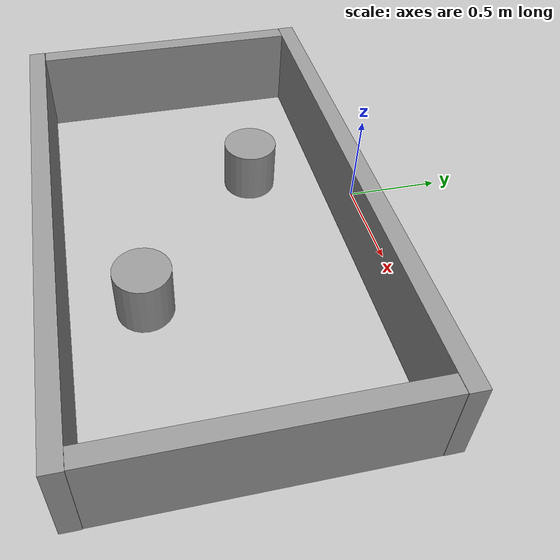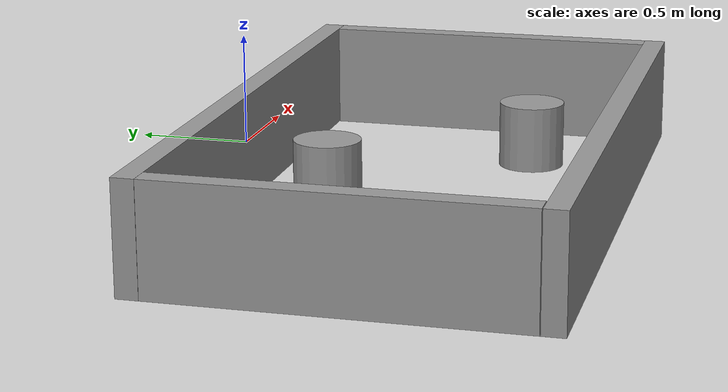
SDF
<?xml version='1.0'?>
<sdf version='1.6'>
  <model name='boundary_with_obstacle'>
    <link name='link'>
      <inertial>
        <mass>1</mass>
        <inertia>
          <ixx>0.166667</ixx>
          <ixy>0</ixy>
          <ixz>0</ixz>
          <iyy>0.166667</iyy>
          <iyz>0</iyz>
          <izz>0.166667</izz>
        </inertia>
        <pose frame=''>0 0 0 0 -0 0</pose>
      </inertial>
      <self_collide>0</self_collide>
      <enable_wind>0</enable_wind>
      <kinematic>0</kinematic>
      <pose frame=''>0 0 0 0 -0 0</pose>
      <gravity>1</gravity>
      <visual name='visual'>
        <geometry>
          <box>
            <size>3 0.1 0.5</size>
          </box>
        </geometry>
        <material>
          <script>
            <name>Gazebo/Grey</name>
            <uri>file://media/materials/scripts/gazebo.material</uri>
          </script>
          <shader type='pixel'>
            <normal_map>__default__</normal_map>
          </shader>
          <ambient>0.3 0.3 0.3 1</ambient>
          <diffuse>0.7 0.7 0.7 1</diffuse>
          <specular>0.01 0.01 0.01 1</specular>
          <emissive>0 0 0 1</emissive>
        </material>
        <pose frame=''>0 0 0 0 -0 0</pose>
        <transparency>0</transparency>
        <cast_shadows>1</cast_shadows>
      </visual>
      <collision name='collision'>
        <laser_retro>0</laser_retro>
        <max_contacts>10</max_contacts>
        <pose frame=''>0 0 0 0 -0 0</pose>
        <geometry>
          <box>
            <size>3 0.1 0.5</size>
          </box>
        </geometry>
        <surface>
          <friction>
            <ode>
              <mu>1</mu>
              <mu2>1</mu2>
              <fdir1>0 0 0</fdir1>
              <slip1>0</slip1>
              <slip2>0</slip2>
            </ode>
            <torsional>
              <coefficient>1</coefficient>
              <patch_radius>0</patch_radius>
              <surface_radius>0</surface_radius>
              <use_patch_radius>1</use_patch_radius>
              <ode>
                <slip>0</slip>
              </ode>
            </torsional>
          </friction>
          <bounce>
            <restitution_coefficient>0</restitution_coefficient>
            <threshold>1e+06</threshold>
          </bounce>
          <contact>
            <collide_without_contact>0</collide_without_contact>
            <collide_without_contact_bitmask>1</collide_without_contact_bitmask>
            <collide_bitmask>1</collide_bitmask>
            <ode>
              <soft_cfm>0</soft_cfm>
              <soft_erp>0.2</soft_erp>
              <kp>1e+13</kp>
              <kd>1</kd>
              <max_vel>0.01</max_vel>
              <min_depth>0</min_depth>
            </ode>
            <bullet>
              <split_impulse>1</split_impulse>
              <split_impulse_penetration_threshold>-0.01</split_impulse_penetration_threshold>
              <soft_cfm>0</soft_cfm>
              <soft_erp>0.2</soft_erp>
              <kp>1e+13</kp>
              <kd>1</kd>
            </bullet>
          </contact>
        </surface>
      </collision>
    </link>
    <model name='boundary'>
      <link name='link_0'>
        <inertial>
          <mass>1</mass>
          <inertia>
            <ixx>0.166667</ixx>
            <ixy>0</ixy>
            <ixz>0</ixz>
            <iyy>0.166667</iyy>
            <iyz>0</iyz>
            <izz>0.166667</izz>
          </inertia>
          <pose frame=''>0 0 0 0 -0 0</pose>
        </inertial>
        <pose frame=''>0.849669 -0.574934 1e-05 -1e-05 0 0</pose>
        <gravity>1</gravity>
        <self_collide>0</self_collide>
        <kinematic>0</kinematic>
        <enable_wind>0</enable_wind>
        <visual name='visual'>
          <pose frame=''>0 0 0 0 -0 0</pose>
          <geometry>
            <box>
              <size>0.1 1.6 0.5</size>
            </box>
          </geometry>
          <material>
            <lighting>1</lighting>
            <script>
              <uri>file://media/materials/scripts/gazebo.material</uri>
              <name>Gazebo/Grey</name>
            </script>
            <shader type='pixel'>
              <normal_map>__default__</normal_map>
            </shader>
            <ambient>0.3 0.3 0.3 1</ambient>
            <diffuse>0.7 0.7 0.7 1</diffuse>
            <specular>0.01 0.01 0.01 1</specular>
            <emissive>0 0 0 1</emissive>
          </material>
          <transparency>0</transparency>
          <cast_shadows>1</cast_shadows>
        </visual>
        <collision name='collision'>
          <laser_retro>0</laser_retro>
          <max_contacts>10</max_contacts>
          <pose frame=''>0 0 0 0 -0 0</pose>
          <geometry>
            <box>
              <size>0.1 1.6 0.5</size>
            </box>
          </geometry>
          <surface>
            <friction>
              <ode>
                <mu>1</mu>
                <mu2>1</mu2>
                <fdir1>0 0 0</fdir1>
                <slip1>0</slip1>
                <slip2>0</slip2>
              </ode>
              <torsional>
                <coefficient>1</coefficient>
                <patch_radius>0</patch_radius>
                <surface_radius>0</surface_radius>
                <use_patch_radius>1</use_patch_radius>
                <ode>
                  <slip>0</slip>
                </ode>
              </torsional>
            </friction>
            <bounce>
              <restitution_coefficient>0</restitution_coefficient>
              <threshold>1e+06</threshold>
            </bounce>
            <contact>
              <collide_without_contact>0</collide_without_contact>
              <collide_without_contact_bitmask>1</collide_without_contact_bitmask>
              <collide_bitmask>1</collide_bitmask>
              <ode>
                <soft_cfm>0</soft_cfm>
                <soft_erp>0.2</soft_erp>
                <kp>1e+13</kp>
                <kd>1</kd>
                <max_vel>0.01</max_vel>
                <min_depth>0</min_depth>
              </ode>
              <bullet>
                <split_impulse>1</split_impulse>
                <split_impulse_penetration_threshold>-0.01</split_impulse_penetration_threshold>
                <soft_cfm>0</soft_cfm>
                <soft_erp>0.2</soft_erp>
                <kp>1e+13</kp>
                <kd>1</kd>
              </bullet>
            </contact>
          </surface>
        </collision>
      </link>
      <static>0</static>
      <allow_auto_disable>1</allow_auto_disable>
      <pose frame=''>0.598833 -0.276304 0.000111 0 0 0</pose>
    </model>
    <model name='boundary_0'>
      <link name='link'>
        <inertial>
          <mass>1</mass>
          <inertia>
            <ixx>0.166667</ixx>
            <ixy>0</ixy>
            <ixz>0</ixz>
            <iyy>0.166667</iyy>
            <iyz>0</iyz>
            <izz>0.166667</izz>
          </inertia>
          <pose frame=''>0 0 0 0 -0 0</pose>
        </inertial>
        <self_collide>0</self_collide>
        <enable_wind>0</enable_wind>
        <kinematic>0</kinematic>
        <pose frame=''>0 0 0 0 -0 0</pose>
        <gravity>1</gravity>
        <visual name='visual'>
          <geometry>
            <box>
              <size>3 0.1 0.5</size>
            </box>
          </geometry>
          <material>
            <script>
              <name>Gazebo/Grey</name>
              <uri>file://media/materials/scripts/gazebo.material</uri>
            </script>
            <shader type='pixel'>
              <normal_map>__default__</normal_map>
            </shader>
            <ambient>0.3 0.3 0.3 1</ambient>
            <diffuse>0.7 0.7 0.7 1</diffuse>
            <specular>0.01 0.01 0.01 1</specular>
            <emissive>0 0 0 1</emissive>
          </material>
          <pose frame=''>0 0 0 0 -0 0</pose>
          <transparency>0</transparency>
          <cast_shadows>1</cast_shadows>
        </visual>
        <collision name='collision'>
          <laser_retro>0</laser_retro>
          <max_contacts>10</max_contacts>
          <pose frame=''>0 0 0 0 -0 0</pose>
          <geometry>
            <box>
              <size>3 0.1 0.5</size>
            </box>
          </geometry>
          <surface>
            <friction>
              <ode>
                <mu>1</mu>
                <mu2>1</mu2>
                <fdir1>0 0 0</fdir1>
                <slip1>0</slip1>
                <slip2>0</slip2>
              </ode>
              <torsional>
                <coefficient>1</coefficient>
                <patch_radius>0</patch_radius>
                <surface_radius>0</surface_radius>
                <use_patch_radius>1</use_patch_radius>
                <ode>
                  <slip>0</slip>
                </ode>
              </torsional>
            </friction>
            <bounce>
              <restitution_coefficient>0</restitution_coefficient>
              <threshold>1e+06</threshold>
            </bounce>
            <contact>
              <collide_without_contact>0</collide_without_contact>
              <collide_without_contact_bitmask>1</collide_without_contact_bitmask>
              <collide_bitmask>1</collide_bitmask>
              <ode>
                <soft_cfm>0</soft_cfm>
                <soft_erp>0.2</soft_erp>
                <kp>1e+13</kp>
                <kd>1</kd>
                <max_vel>0.01</max_vel>
                <min_depth>0</min_depth>
              </ode>
              <bullet>
                <split_impulse>1</split_impulse>
                <split_impulse_penetration_threshold>-0.01</split_impulse_penetration_threshold>
                <soft_cfm>0</soft_cfm>
                <soft_erp>0.2</soft_erp>
                <kp>1e+13</kp>
                <kd>1</kd>
              </bullet>
            </contact>
          </surface>
        </collision>
      </link>
      <static>0</static>
      <allow_auto_disable>1</allow_auto_disable>
      <pose frame=''>0.000903 -1.70179 -8e-06 0 0 0</pose>
    </model>
    <model name='boundary_1'>
      <link name='link_0'>
        <inertial>
          <mass>1</mass>
          <inertia>
            <ixx>0.166667</ixx>
            <ixy>0</ixy>
            <ixz>0</ixz>
            <iyy>0.166667</iyy>
            <iyz>0</iyz>
            <izz>0.166667</izz>
          </inertia>
          <pose frame=''>0 0 0 0 -0 0</pose>
        </inertial>
        <pose frame=''>0.849669 -0.574934 1e-05 -1e-05 0 0</pose>
        <gravity>1</gravity>
        <self_collide>0</self_collide>
        <kinematic>0</kinematic>
        <enable_wind>0</enable_wind>
        <visual name='visual'>
          <pose frame=''>0 0 0 0 -0 0</pose>
          <geometry>
            <box>
              <size>0.1 1.6 0.5</size>
            </box>
          </geometry>
          <material>
            <lighting>1</lighting>
            <script>
              <uri>file://media/materials/scripts/gazebo.material</uri>
              <name>Gazebo/Grey</name>
            </script>
            <shader type='pixel'>
              <normal_map>__default__</normal_map>
            </shader>
            <ambient>0.3 0.3 0.3 1</ambient>
            <diffuse>0.7 0.7 0.7 1</diffuse>
            <specular>0.01 0.01 0.01 1</specular>
            <emissive>0 0 0 1</emissive>
          </material>
          <transparency>0</transparency>
          <cast_shadows>1</cast_shadows>
        </visual>
        <collision name='collision'>
          <laser_retro>0</laser_retro>
          <max_contacts>10</max_contacts>
          <pose frame=''>0 0 0 0 -0 0</pose>
          <geometry>
            <box>
              <size>0.1 1.6 0.5</size>
            </box>
          </geometry>
          <surface>
            <friction>
              <ode>
                <mu>1</mu>
                <mu2>1</mu2>
                <fdir1>0 0 0</fdir1>
                <slip1>0</slip1>
                <slip2>0</slip2>
              </ode>
              <torsional>
                <coefficient>1</coefficient>
                <patch_radius>0</patch_radius>
                <surface_radius>0</surface_radius>
                <use_patch_radius>1</use_patch_radius>
                <ode>
                  <slip>0</slip>
                </ode>
              </torsional>
            </friction>
            <bounce>
              <restitution_coefficient>0</restitution_coefficient>
              <threshold>1e+06</threshold>
            </bounce>
            <contact>
              <collide_without_contact>0</collide_without_contact>
              <collide_without_contact_bitmask>1</collide_without_contact_bitmask>
              <collide_bitmask>1</collide_bitmask>
              <ode>
                <soft_cfm>0</soft_cfm>
                <soft_erp>0.2</soft_erp>
                <kp>1e+13</kp>
                <kd>1</kd>
                <max_vel>0.01</max_vel>
                <min_depth>0</min_depth>
              </ode>
              <bullet>
                <split_impulse>1</split_impulse>
                <split_impulse_penetration_threshold>-0.01</split_impulse_penetration_threshold>
                <soft_cfm>0</soft_cfm>
                <soft_erp>0.2</soft_erp>
                <kp>1e+13</kp>
                <kd>1</kd>
              </bullet>
            </contact>
          </surface>
        </collision>
      </link>
      <static>0</static>
      <allow_auto_disable>1</allow_auto_disable>
      <pose frame=''>-2.29821 -0.273124 -0.000431 0 0 0</pose>
    </model>
    <model name='cylinder_obstacle'>
      <link name='link'>
        <inertial>
          <mass>1</mass>
          <inertia>
            <ixx>0.145833</ixx>
            <ixy>0</ixy>
            <ixz>0</ixz>
            <iyy>0.145833</iyy>
            <iyz>0</iyz>
            <izz>0.125</izz>
          </inertia>
          <pose frame=''>0 0 0 0 -0 0</pose>
        </inertial>
        <self_collide>0</self_collide>
        <enable_wind>0</enable_wind>
        <kinematic>0</kinematic>
        <pose frame=''>0 0 0 0 -0 0</pose>
        <gravity>1</gravity>
        <visual name='visual'>
          <geometry>
            <cylinder>
              <radius>0.15</radius>
              <length>0.3</length>
            </cylinder>
          </geometry>
          <material>
            <script>
              <name>Gazebo/Grey</name>
              <uri>file://media/materials/scripts/gazebo.material</uri>
            </script>
            <shader type='pixel'>
              <normal_map>__default__</normal_map>
            </shader>
            <ambient>0.3 0.3 0.3 1</ambient>
            <diffuse>0.7 0.7 0.7 1</diffuse>
            <specular>0.01 0.01 0.01 1</specular>
            <emissive>0 0 0 1</emissive>
          </material>
          <pose frame=''>0 0 0 0 -0 0</pose>
          <transparency>0</transparency>
          <cast_shadows>1</cast_shadows>
        </visual>
        <collision name='collision'>
          <laser_retro>0</laser_retro>
          <max_contacts>10</max_contacts>
          <pose frame=''>0 0 0 0 -0 0</pose>
          <geometry>
            <cylinder>
              <radius>0.15</radius>
              <length>0.3</length>
            </cylinder>
          </geometry>
          <surface>
            <friction>
              <ode>
                <mu>1</mu>
                <mu2>1</mu2>
                <fdir1>0 0 0</fdir1>
                <slip1>0</slip1>
                <slip2>0</slip2>
              </ode>
              <torsional>
                <coefficient>1</coefficient>
                <patch_radius>0</patch_radius>
                <surface_radius>0</surface_radius>
                <use_patch_radius>1</use_patch_radius>
                <ode>
                  <slip>0</slip>
                </ode>
              </torsional>
            </friction>
            <bounce>
              <restitution_coefficient>0</restitution_coefficient>
              <threshold>1e+06</threshold>
            </bounce>
            <contact>
              <collide_without_contact>0</collide_without_contact>
              <collide_without_contact_bitmask>1</collide_without_contact_bitmask>
              <collide_bitmask>1</collide_bitmask>
              <ode>
                <soft_cfm>0</soft_cfm>
                <soft_erp>0.2</soft_erp>
                <kp>1e+13</kp>
                <kd>1</kd>
                <max_vel>0.01</max_vel>
                <min_depth>0</min_depth>
              </ode>
              <bullet>
                <split_impulse>1</split_impulse>
                <split_impulse_penetration_threshold>-0.01</split_impulse_penetration_threshold>
                <soft_cfm>0</soft_cfm>
                <soft_erp>0.2</soft_erp>
                <kp>1e+13</kp>
                <kd>1</kd>
              </bullet>
            </contact>
          </surface>
        </collision>
      </link>
      <static>0</static>
      <allow_auto_disable>1</allow_auto_disable>
      <pose frame=''>-0.394642 -0.50638 6e-06 0 0 0</pose>
    </model>
    <model name='cylinder_obstacle_0'>
      <link name='link'>
        <inertial>
          <mass>1</mass>
          <inertia>
            <ixx>0.145833</ixx>
            <ixy>0</ixy>
            <ixz>0</ixz>
            <iyy>0.145833</iyy>
            <iyz>0</iyz>
            <izz>0.125</izz>
          </inertia>
          <pose frame=''>0 0 0 0 -0 0</pose>
        </inertial>
        <self_collide>0</self_collide>
        <enable_wind>0</enable_wind>
        <kinematic>0</kinematic>
        <pose frame=''>0 0 0 0 -0 0</pose>
        <gravity>1</gravity>
        <visual name='visual'>
          <geometry>
            <cylinder>
              <radius>0.15</radius>
              <length>0.3</length>
            </cylinder>
          </geometry>
          <material>
            <script>
              <name>Gazebo/Grey</name>
              <uri>file://media/materials/scripts/gazebo.material</uri>
            </script>
            <shader type='pixel'>
              <normal_map>__default__</normal_map>
            </shader>
            <ambient>0.3 0.3 0.3 1</ambient>
            <diffuse>0.7 0.7 0.7 1</diffuse>
            <specular>0.01 0.01 0.01 1</specular>
            <emissive>0 0 0 1</emissive>
          </material>
          <pose frame=''>0 0 0 0 -0 0</pose>
          <transparency>0</transparency>
          <cast_shadows>1</cast_shadows>
        </visual>
        <collision name='collision'>
          <laser_retro>0</laser_retro>
          <max_contacts>10</max_contacts>
          <pose frame=''>0 0 0 0 -0 0</pose>
          <geometry>
            <cylinder>
              <radius>0.15</radius>
              <length>0.3</length>
            </cylinder>
          </geometry>
          <surface>
            <friction>
              <ode>
                <mu>1</mu>
                <mu2>1</mu2>
                <fdir1>0 0 0</fdir1>
                <slip1>0</slip1>
                <slip2>0</slip2>
              </ode>
              <torsional>
                <coefficient>1</coefficient>
                <patch_radius>0</patch_radius>
                <surface_radius>0</surface_radius>
                <use_patch_radius>1</use_patch_radius>
                <ode>
                  <slip>0</slip>
                </ode>
              </torsional>
            </friction>
            <bounce>
              <restitution_coefficient>0</restitution_coefficient>
              <threshold>1e+06</threshold>
            </bounce>
            <contact>
              <collide_without_contact>0</collide_without_contact>
              <collide_without_contact_bitmask>1</collide_without_contact_bitmask>
              <collide_bitmask>1</collide_bitmask>
              <ode>
                <soft_cfm>0</soft_cfm>
                <soft_erp>0.2</soft_erp>
                <kp>1e+13</kp>
                <kd>1</kd>
                <max_vel>0.01</max_vel>
                <min_depth>0</min_depth>
              </ode>
              <bullet>
                <split_impulse>1</split_impulse>
                <split_impulse_penetration_threshold>-0.01</split_impulse_penetration_threshold>
                <soft_cfm>0</soft_cfm>
                <soft_erp>0.2</soft_erp>
                <kp>1e+13</kp>
                <kd>1</kd>
              </bullet>
            </contact>
          </surface>
        </collision>
      </link>
      <static>0</static>
      <allow_auto_disable>1</allow_auto_disable>
      <pose frame=''>0.474114 -1.25254 1.8e-05 0 0 0</pose>
    </model>
    <static>0</static>
    <allow_auto_disable>1</allow_auto_disable>
  </model>
</sdf>
